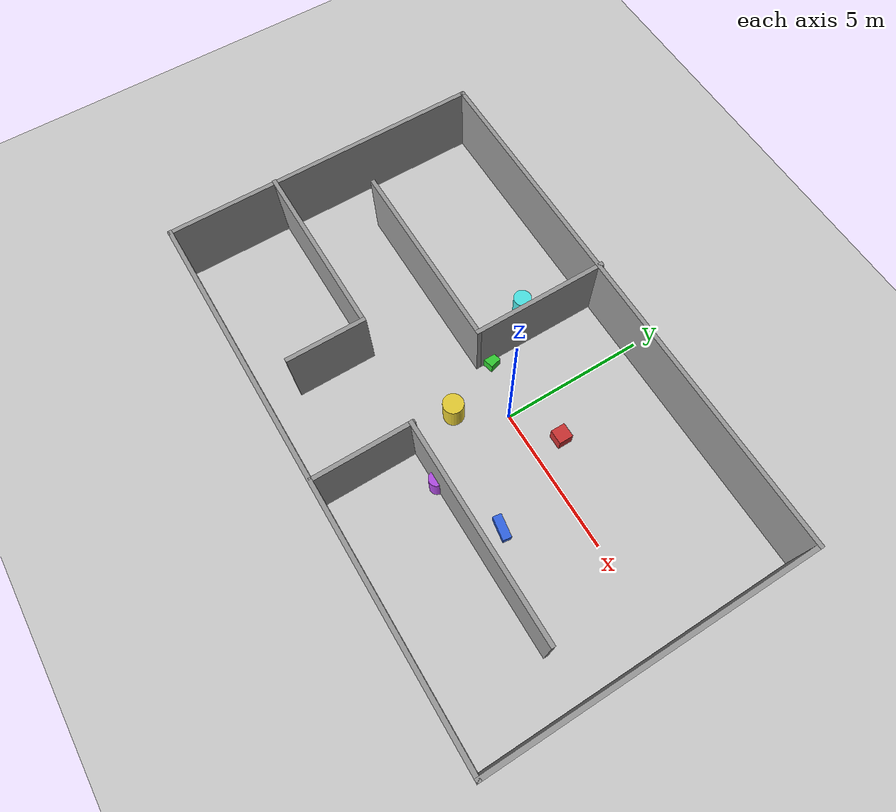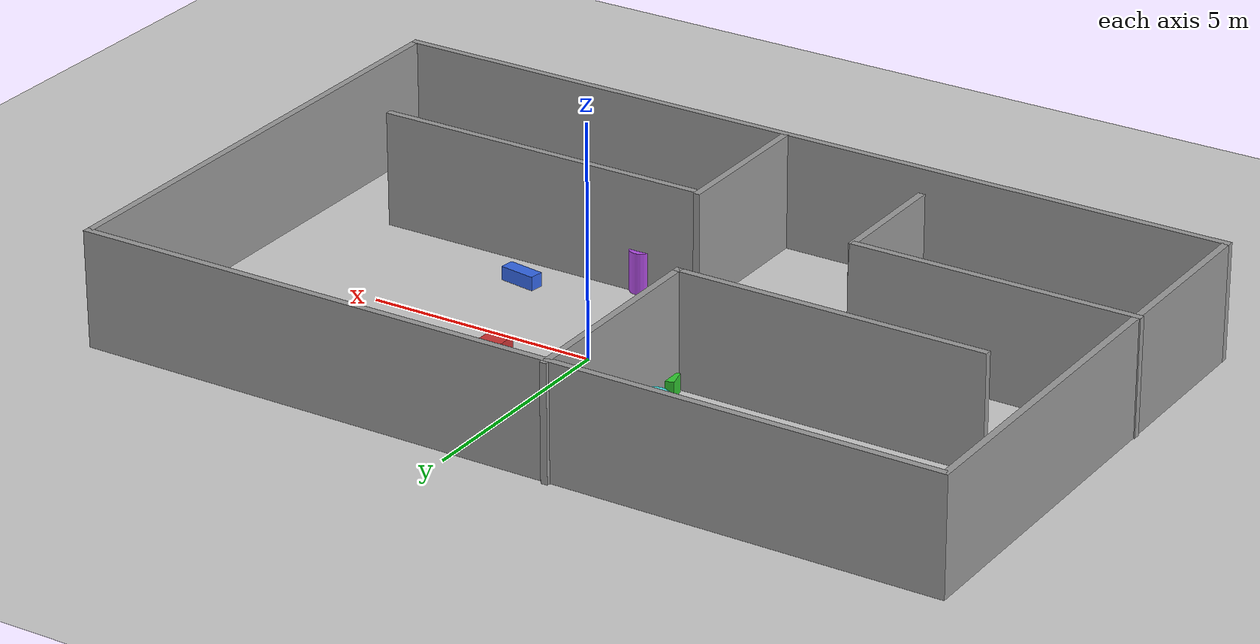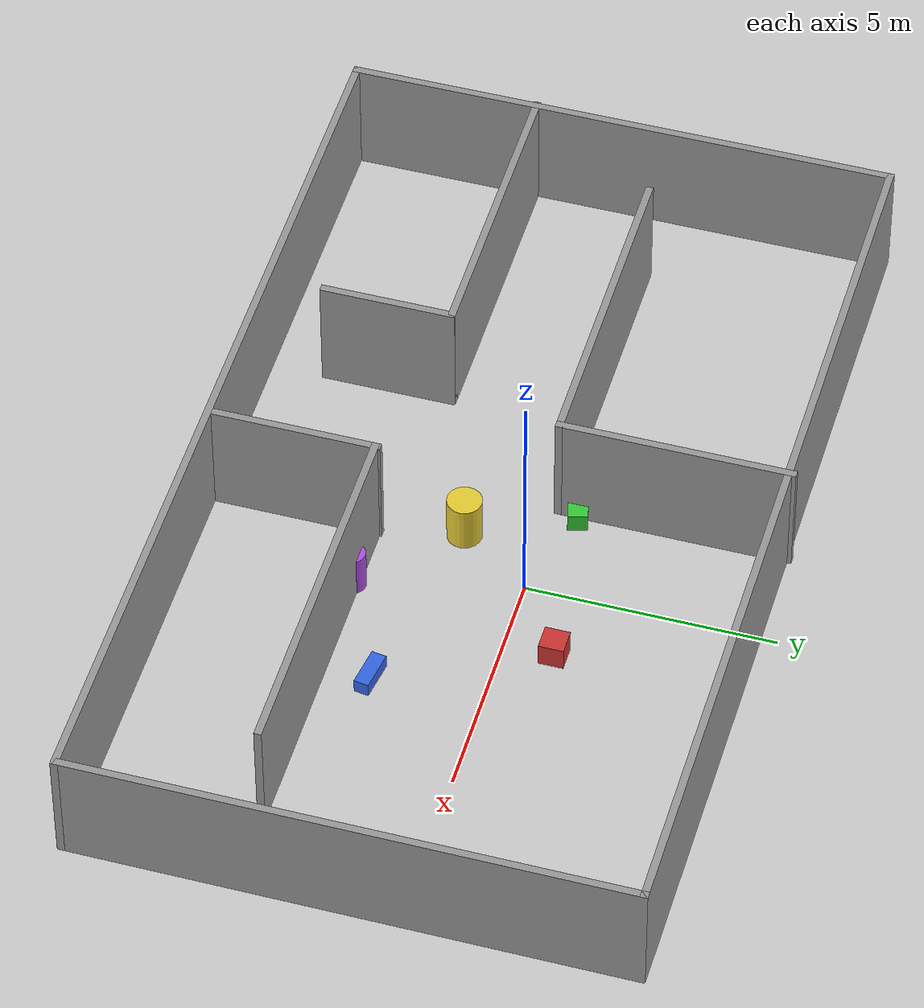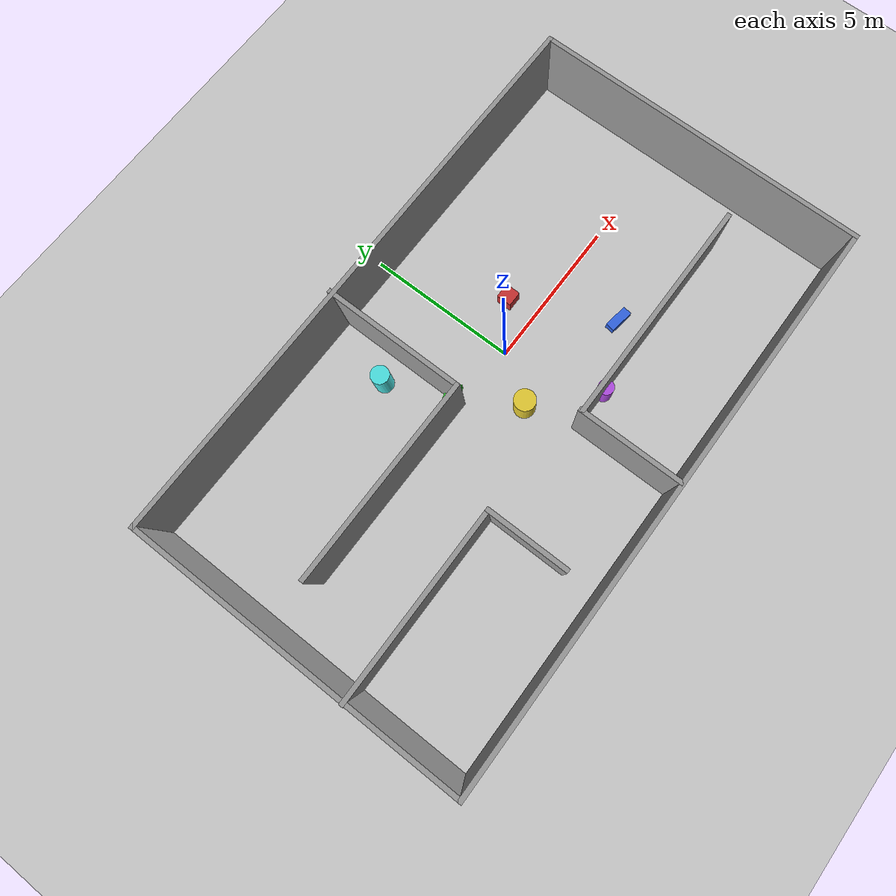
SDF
<?xml version="1.0"?>
<sdf version="1.7">
  <world name="room_world">
    <include>
      <uri>model://sun</uri>
    </include>
    <include>
      <uri>model://ground_plane</uri>
    </include>

    <!-- Simple obstacles for SLAM/navigation validation -->
    <model name="obstacle_box_1">
      <pose>1.5 1.0 0.25 0 0 0</pose>
      <static>true</static>
      <link name="link">
        <collision name="collision">
          <geometry>
            <box>
              <size>0.5 0.5 0.5</size>
            </box>
          </geometry>
        </collision>
        <visual name="visual">
          <geometry>
            <box>
              <size>0.5 0.5 0.5</size>
            </box>
          </geometry>
          <material>
            <ambient>0.8 0.2 0.2 1</ambient>
          </material>
        </visual>
      </link>
    </model>

    <model name="obstacle_box_2">
      <pose>-2.0 0.5 0.20 0 0 0.25</pose>
      <static>true</static>
      <link name="link">
        <collision name="collision">
          <geometry>
            <box>
              <size>0.6 0.4 0.4</size>
            </box>
          </geometry>
        </collision>
        <visual name="visual">
          <geometry>
            <box>
              <size>0.6 0.4 0.4</size>
            </box>
          </geometry>
          <material>
            <ambient>0.2 0.8 0.2 1</ambient>
          </material>
        </visual>
      </link>
    </model>

    <model name="obstacle_box_3">
      <pose>3.0 -2.2 0.15 0 0 -0.15</pose>
      <static>true</static>
      <link name="link">
        <collision name="collision">
          <geometry>
            <box>
              <size>0.8 0.3 0.3</size>
            </box>
          </geometry>
        </collision>
        <visual name="visual">
          <geometry>
            <box>
              <size>0.8 0.3 0.3</size>
            </box>
          </geometry>
          <material>
            <ambient>0.2 0.4 0.9 1</ambient>
          </material>
        </visual>
      </link>
    </model>

    <model name="obstacle_cyl_1">
      <pose>-1.0 -1.5 0.5 0 0 0</pose>
      <static>true</static>
      <link name="link">
        <collision name="collision">
          <geometry>
            <cylinder>
              <radius>0.35</radius>
              <length>1.0</length>
            </cylinder>
          </geometry>
        </collision>
        <visual name="visual">
          <geometry>
            <cylinder>
              <radius>0.35</radius>
              <length>1.0</length>
            </cylinder>
          </geometry>
          <material>
            <ambient>0.9 0.8 0.2 1</ambient>
          </material>
        </visual>
      </link>
    </model>

    <model name="obstacle_cyl_2">
      <pose>0.8 -3.2 0.45 0 0 0</pose>
      <static>true</static>
      <link name="link">
        <collision name="collision">
          <geometry>
            <cylinder>
              <radius>0.25</radius>
              <length>0.9</length>
            </cylinder>
          </geometry>
        </collision>
        <visual name="visual">
          <geometry>
            <cylinder>
              <radius>0.25</radius>
              <length>0.9</length>
            </cylinder>
          </geometry>
          <material>
            <ambient>0.7 0.3 0.9 1</ambient>
          </material>
        </visual>
      </link>
    </model>

    <model name="obstacle_cyl_3">
      <pose>-3.0 2.4 0.55 0 0 0</pose>
      <static>true</static>
      <link name="link">
        <collision name="collision">
          <geometry>
            <cylinder>
              <radius>0.30</radius>
              <length>1.1</length>
            </cylinder>
          </geometry>
        </collision>
        <visual name="visual">
          <geometry>
            <cylinder>
              <radius>0.30</radius>
              <length>1.1</length>
            </cylinder>
          </geometry>
          <material>
            <ambient>0.3 0.9 0.9 1</ambient>
          </material>
        </visual>
      </link>
    </model>

    <!-- Room walls provided by user -->
    <model name="room">
      <pose>-0.972666 -0.903877 0 0 0 0</pose>

      <link name="Wall_66">
        <collision name="Wall_66_Collision">
          <geometry>
            <box>
              <size>19 0.15 2.5</size>
            </box>
          </geometry>
          <pose>0 0 1.25 0 0 0</pose>
        </collision>
        <visual name="Wall_66_Visual">
          <pose>0 0 1.25 0 0 0</pose>
          <geometry>
            <box>
              <size>19 0.15 2.5</size>
            </box>
          </geometry>
          <material>
            <script>
              <uri>file://media/materials/scripts/gazebo.material</uri>
              <name>Gazebo/Grey</name>
            </script>
            <ambient>1 1 1 1</ambient>
          </material>
          <meta>
            <layer>0</layer>
          </meta>
        </visual>
        <pose>0.013921 5.50955 0 0 0 0</pose>
      </link>

      <link name="Wall_67">
        <collision name="Wall_67_Collision">
          <geometry>
            <box>
              <size>11.25 0.15 2.5</size>
            </box>
          </geometry>
          <pose>0 0 1.25 0 0 0</pose>
        </collision>
        <visual name="Wall_67_Visual">
          <pose>0 0 1.25 0 0 0</pose>
          <geometry>
            <box>
              <size>11.25 0.15 2.5</size>
            </box>
          </geometry>
          <material>
            <script>
              <uri>file://media/materials/scripts/gazebo.material</uri>
              <name>Gazebo/Grey</name>
            </script>
            <ambient>1 1 1 1</ambient>
          </material>
          <meta>
            <layer>0</layer>
          </meta>
        </visual>
        <pose>9.43892 -0.040455 0 0 0 -1.5708</pose>
      </link>

      <link name="Wall_68">
        <collision name="Wall_68_Collision">
          <geometry>
            <box>
              <size>19 0.15 2.5</size>
            </box>
          </geometry>
          <pose>0 0 1.25 0 0 0</pose>
        </collision>
        <visual name="Wall_68_Visual">
          <pose>0 0 1.25 0 0 0</pose>
          <geometry>
            <box>
              <size>19 0.15 2.5</size>
            </box>
          </geometry>
          <material>
            <script>
              <uri>file://media/materials/scripts/gazebo.material</uri>
              <name>Gazebo/Grey</name>
            </script>
            <ambient>1 1 1 1</ambient>
          </material>
          <meta>
            <layer>0</layer>
          </meta>
        </visual>
        <pose>0.013921 -5.59046 0 0 0 3.14159</pose>
      </link>

      <link name="Wall_69">
        <collision name="Wall_69_Collision">
          <geometry>
            <box>
              <size>11.25 0.15 2.5</size>
            </box>
          </geometry>
          <pose>0 0 1.25 0 0 0</pose>
        </collision>
        <visual name="Wall_69_Visual">
          <pose>0 0 1.25 0 0 0</pose>
          <geometry>
            <box>
              <size>11.25 0.15 2.5</size>
            </box>
          </geometry>
          <material>
            <script>
              <uri>file://media/materials/scripts/gazebo.material</uri>
              <name>Gazebo/Grey</name>
            </script>
            <ambient>1 1 1 1</ambient>
          </material>
          <meta>
            <layer>0</layer>
          </meta>
        </visual>
        <pose>-9.41108 -0.040455 0 0 0 1.5708</pose>
      </link>

      <link name="Wall_71">
        <collision name="Wall_71_Collision">
          <geometry>
            <box>
              <size>4.75 0.15 2.5</size>
            </box>
          </geometry>
          <pose>0 0 1.25 0 0 0</pose>
        </collision>
        <visual name="Wall_71_Visual">
          <pose>0 0 1.25 0 0 0</pose>
          <geometry>
            <box>
              <size>4.75 0.15 2.5</size>
            </box>
          </geometry>
          <material>
            <script>
              <uri>file://media/materials/scripts/gazebo.material</uri>
              <name>Gazebo/Grey</name>
            </script>
            <ambient>1 1 1 1</ambient>
          </material>
          <meta>
            <layer>0</layer>
          </meta>
        </visual>
        <pose>-1.11769 3.29046 0 0 0 -1.5708</pose>
      </link>

      <link name="Wall_72">
        <collision name="Wall_72_Collision">
          <geometry>
            <box>
              <size>6.75 0.15 2.5</size>
            </box>
          </geometry>
          <pose>0 0 1.25 0 0 0</pose>
        </collision>
        <visual name="Wall_72_Visual">
          <pose>0 0 1.25 0 0 0</pose>
          <geometry>
            <box>
              <size>6.75 0.15 2.5</size>
            </box>
          </geometry>
          <material>
            <script>
              <uri>file://media/materials/scripts/gazebo.material</uri>
              <name>Gazebo/Grey</name>
            </script>
            <ambient>1 1 1 1</ambient>
          </material>
          <meta>
            <layer>0</layer>
          </meta>
        </visual>
        <pose>-4.41769 0.990456 0 0 0 3.14159</pose>
      </link>

      <link name="Wall_79">
        <collision name="Wall_79_Collision">
          <geometry>
            <box>
              <size>3.47722 0.15 2.5</size>
            </box>
          </geometry>
          <pose>0 0 1.25 0 0 0</pose>
        </collision>
        <visual name="Wall_79_Visual">
          <pose>0 0 1.25 0 0 0</pose>
          <geometry>
            <box>
              <size>3.47722 0.15 2.5</size>
            </box>
          </geometry>
          <material>
            <script>
              <uri>file://media/materials/scripts/gazebo.material</uri>
              <name>Gazebo/Grey</name>
            </script>
            <ambient>1 1 1 1</ambient>
          </material>
          <meta>
            <layer>0</layer>
          </meta>
        </visual>
        <pose>0.391784 -3.86799 0 0 0 1.5708</pose>
      </link>

      <link name="Wall_80">
        <collision name="Wall_80_Collision">
          <geometry>
            <box>
              <size>7.5 0.15 2.5</size>
            </box>
          </geometry>
          <pose>0 0 1.25 0 0 0</pose>
        </collision>
        <visual name="Wall_80_Visual">
          <pose>0 0 1.25 0 0 0</pose>
          <geometry>
            <box>
              <size>7.5 0.15 2.5</size>
            </box>
          </geometry>
          <material>
            <script>
              <uri>file://media/materials/scripts/gazebo.material</uri>
              <name>Gazebo/Grey</name>
            </script>
            <ambient>1 1 1 1</ambient>
          </material>
          <meta>
            <layer>0</layer>
          </meta>
        </visual>
        <pose>4.06678 -2.24484 0 0 0 0</pose>
      </link>

      <link name="Wall_85">
        <collision name="Wall_85_Collision">
          <geometry>
            <box>
              <size>6.25 0.15 2.5</size>
            </box>
          </geometry>
          <pose>0 0 1.25 0 0 0</pose>
        </collision>
        <visual name="Wall_85_Visual">
          <pose>0 0 1.25 0 0 0</pose>
          <geometry>
            <box>
              <size>6.25 0.15 2.5</size>
            </box>
          </geometry>
          <material>
            <script>
              <uri>file://media/materials/scripts/gazebo.material</uri>
              <name>Gazebo/Grey</name>
            </script>
            <ambient>1 1 1 1</ambient>
          </material>
          <meta>
            <layer>0</layer>
          </meta>
        </visual>
        <pose>-6.38892 -1.80969 0 0 0 0</pose>
      </link>

      <link name="Wall_86">
        <collision name="Wall_86_Collision">
          <geometry>
            <box>
              <size>2.75 0.15 2.5</size>
            </box>
          </geometry>
          <pose>0 0 1.25 0 0 0</pose>
        </collision>
        <visual name="Wall_86_Visual">
          <pose>0 0 1.25 0 0 0</pose>
          <geometry>
            <box>
              <size>2.75 0.15 2.5</size>
            </box>
          </geometry>
          <material>
            <script>
              <uri>file://media/materials/scripts/gazebo.material</uri>
              <name>Gazebo/Grey</name>
            </script>
            <ambient>1 1 1 1</ambient>
          </material>
          <meta>
            <layer>0</layer>
          </meta>
        </visual>
        <pose>-3.33892 -3.10969 0 0 0 -1.5708</pose>
      </link>

      <static>true</static>
    </model>
  </world>
</sdf>
